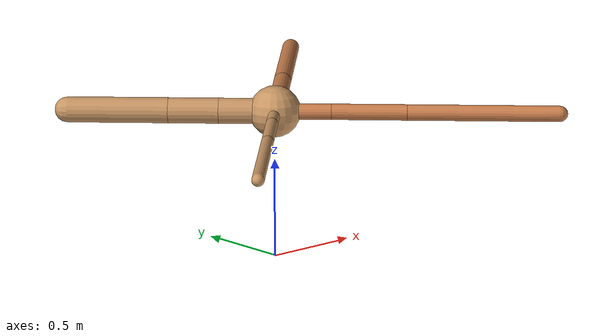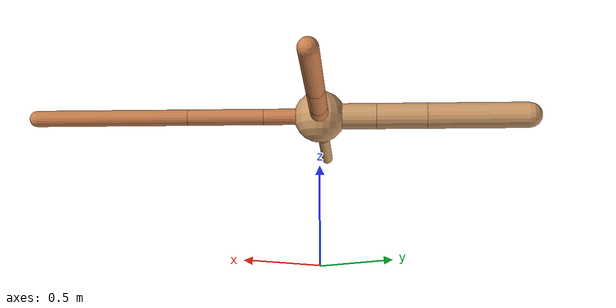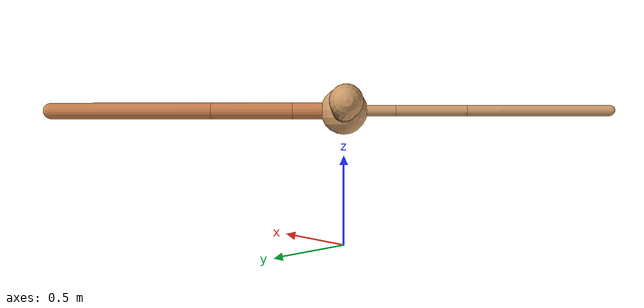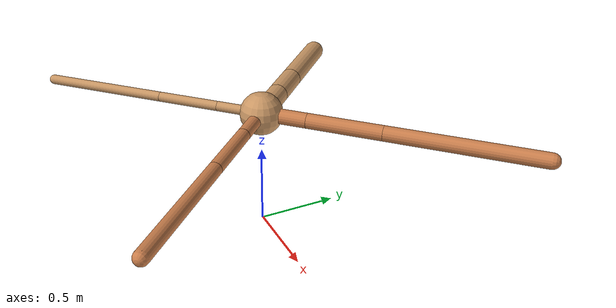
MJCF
<?xml version="1.0" ?>
<mujoco model="ant">

	<compiler angle="degree" coordinate="local" inertiafromgeom="true"/>

	<option integrator="RK4" timestep="0.01"/>

	<custom>

		<numeric data="0.0 0.0 0.55 1.0 0.0 0.0 0.0 0.0 1.0 0.0 -1.0 0.0 -1.0 0.0 1.0" name="init_qpos"/>

	</custom>

	<default>

		<joint armature="1" damping="1" limited="true"/>

		<geom conaffinity="0" condim="3" density="5.0" friction="1.5 0.1 0.1" margin="0.01" rgba="0.8 0.6 0.4 1"/>

	</default>

	<worldbody>

		<body name="torso" pos="0 0 0.75">

			<geom name="torso_geom" pos="0 0 0" size="0.1301000023929877" type="sphere"/>

			<!--joint armature="0" damping="0" limited="false" margin="0.01" name="root" pos="0 0 0" type="free"/-->

			<body name="front_left_leg" pos="0 0 0">

				<geom fromto="0 0 0 0.2 0.2 0" name="aux_1_geom" size="0.04547360485549698" type="capsule" rgba=".8 .5 .3 1"/>

				<body name="aux_1" pos="0.2 0.2 0">

					<joint axis="0 0 1" name="hip_1" pos="0.0 0.0 0.0" range="-40 40" type="hinge"/>

					<geom fromto="0 0 0 0.3174822692108367 0.3174822692108367 0" name="left_leg_geom" size="0.04547360485549698" type="capsule" rgba=".8 .5 .3 1"/>

					<body pos="0.3174822692108367 0.3174822692108367 0" name="front_left_foot">

						<joint axis="-1 1 0" name="ankle_1" pos="0.0 0.0 0.0" range="30 100" type="hinge"/>

						<geom fromto="0 0 0 0.6349645384216734 0.6349645384216734 0" name="left_ankle_geom" size="0.04547360485549698" type="capsule" rgba=".8 .5 .3 1"/>

					</body>

				</body>

			</body>

			<body name="front_right_leg" pos="0 0 0">

				<geom fromto="0 0 0 -0.2 0.2 0" name="aux_2_geom" size="0.06465190656002735" type="capsule"/>

				<body name="aux_2" pos="-0.2 0.2 0">

					<joint axis="0 0 1" name="hip_2" pos="0.0 0.0 0.0" range="-40 40" type="hinge"/>

					<geom fromto="0 0 0 -0.17982422519039826 0.17982422519039826 0" name="right_leg_geom" size="0.06465190656002735" type="capsule"/>

					<body pos="-0.17982422519039826 0.17982422519039826 0" name="front_right_foot">

						<joint axis="1 1 0" name="ankle_2" pos="0.0 0.0 0.0" range="-100 -30" type="hinge"/>

						<geom fromto="0 0 0 -0.3596484503807965 0.3596484503807965 0" name="right_ankle_geom" size="0.06465190656002735" type="capsule"/>

					</body>

				</body>

			</body>

			<body name="left_back_leg" pos="0 0 0">

				<geom fromto="0 0 0 -0.2 -0.2 0" name="aux_3_geom" size="0.030006584703168047" type="capsule"/>

				<body name="aux_3" pos="-0.2 -0.2 0">

					<joint axis="0 0 1" name="hip_3" pos="0.0 0.0 0.0" range="-40 40" type="hinge"/>

					<geom fromto="0 0 0 -0.27416663515087664 -0.27416663515087664 0" name="back_leg_geom" size="0.030006584703168047" type="capsule"/>

					<body pos="-0.27416663515087664 -0.27416663515087664 0" name="left_back_foot">

						<joint axis="-1 1 0" name="ankle_3" pos="0.0 0.0 0.0" range="-100 -30" type="hinge"/>

						<geom fromto="0 0 0 -0.5483332703017533 -0.5483332703017533 0" name="third_ankle_geom" size="0.030006584703168047" type="capsule"/>

					</body>

				</body>

			</body>

			<body name="right_back_leg" pos="0 0 0">

				<geom fromto="0 0 0 0.2 -0.2 0" name="aux_4_geom" size="0.04026393695273672" type="capsule" rgba=".8 .5 .3 1"/>

				<body name="aux_4" pos="0.2 -0.2 0">

					<joint axis="0 0 1" name="hip_4" pos="0.0 0.0 0.0" range="-40 40" type="hinge"/>

					<geom fromto="0 0 0 0.26990821095298223 -0.26990821095298223 0" name="rightback_leg_geom" size="0.04026393695273672" type="capsule" rgba=".8 .5 .3 1"/>

					<body pos="0.26990821095298223 -0.26990821095298223 0" name="right_back_foot">

						<joint axis="1 1 0" name="ankle_4" pos="0.0 0.0 0.0" range="30 100" type="hinge"/>

						<geom fromto="0 0 0 0.5398164219059645 -0.5398164219059645 0" name="fourth_ankle_geom" size="0.04026393695273672" type="capsule" rgba=".8 .5 .3 1"/>

					</body>

				</body>

			</body>

		</body>

	</worldbody>

	<actuator>

		<motor ctrllimited="true" ctrlrange="-1.0 1.0" joint="hip_4" gear="150"/>

		<motor ctrllimited="true" ctrlrange="-1.0 1.0" joint="ankle_4" gear="150"/>

		<motor ctrllimited="true" ctrlrange="-1.0 1.0" joint="hip_1" gear="150"/>

		<motor ctrllimited="true" ctrlrange="-1.0 1.0" joint="ankle_1" gear="150"/>

		<motor ctrllimited="true" ctrlrange="-1.0 1.0" joint="hip_2" gear="150"/>

		<motor ctrllimited="true" ctrlrange="-1.0 1.0" joint="ankle_2" gear="150"/>

		<motor ctrllimited="true" ctrlrange="-1.0 1.0" joint="hip_3" gear="150"/>

		<motor ctrllimited="true" ctrlrange="-1.0 1.0" joint="ankle_3" gear="150"/>

	</actuator>

</mujoco>
